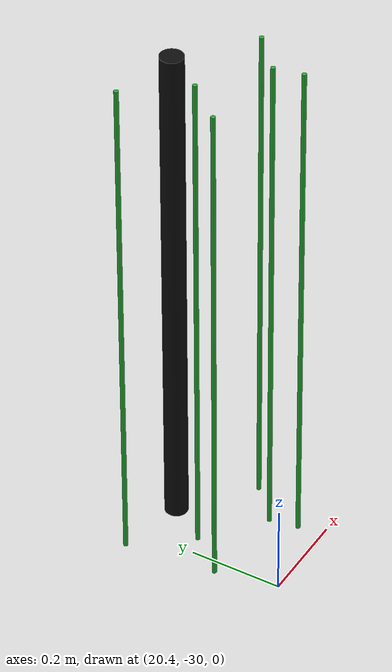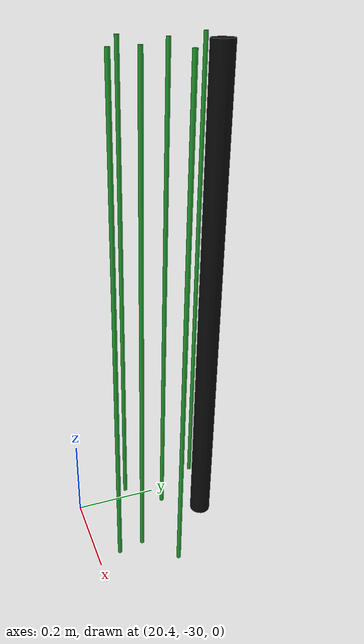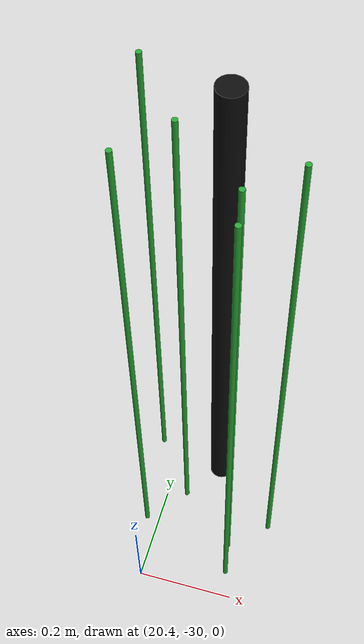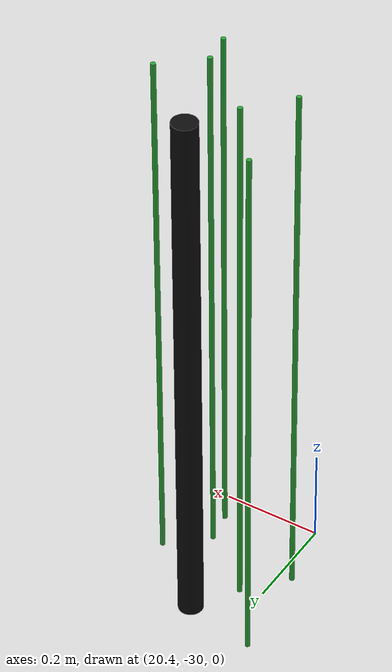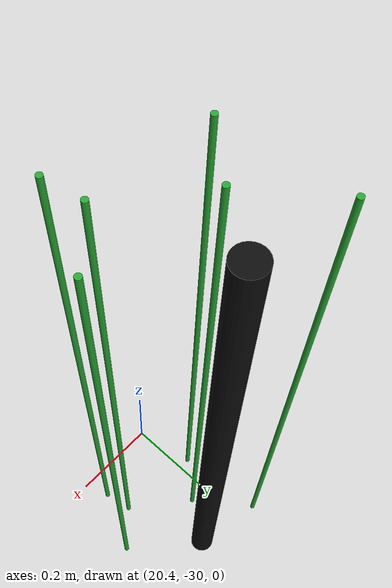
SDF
<sdf version="1.6">
 <world name="default">
  <model name="pole_24">
   <static>1</static>
   <pose>20.5 -29.7 0.575 0 -0 0</pose>
   <link name="link">
    <collision name="collision">
     <geometry><cylinder><length>1.15</length><radius>0.025</radius></cylinder></geometry>
    </collision>
    <visual name="visual">
     <geometry><cylinder><length>1.15</length><radius>0.025</radius></cylinder></geometry>
     <material>
      <script><uri>file://media/materials/scripts/gazebo.material</uri><name>Gazebo/Chrome</name></script>
      <shader type="vertex"><normal_map>__default__</normal_map></shader>
      <emissive>0.1 0.1 0.1 1</emissive>
      <specular>0.01 0.01 0.01 1</specular>
      <ambient>0.5 0.5 0.5 1</ambient>
      <diffuse>0.05 0.05 0.05 1</diffuse>
     </material>
    </visual>
   </link>
  </model>
  <model name="pole_27_clone_clone_55">
   <link name="link">
    <inertial>
     <mass>1</mass>
     <inertia><ixx>1</ixx><ixy>0</ixy><ixz>0</ixz><iyy>1</iyy><iyz>0</iyz><izz>1</izz></inertia>
    </inertial>
    <visual name="visual">
     <geometry><cylinder><length>1.15</length><radius>0.005</radius></cylinder></geometry>
     <material>
      <script><uri>file://media/materials/scripts/gazebo.material</uri><name>Gazebo/Green</name></script>
      <shader type="vertex"><normal_map>__default__</normal_map></shader>
      <emissive>0 0.1 0 1</emissive>
      <specular>0 0.01 0 1</specular>
      <ambient>0 0.5 0 1</ambient>
      <diffuse>0 0.05 0 1</diffuse>
     </material>
    </visual>
    <collision name="collision">
     <geometry><cylinder><radius>0.005</radius><length>1.15</length></cylinder></geometry>
     <surface>
      <friction>
       <ode><mu>1</mu><mu2>1</mu2><fdir1>0 0 0</fdir1><slip1>0</slip1><slip2>0</slip2></ode>
       <torsional>
        <coefficient>1</coefficient>
        <patch_radius>0</patch_radius>
        <surface_radius>0</surface_radius>
        <use_patch_radius>1</use_patch_radius>
        <ode><slip>0</slip></ode>
       </torsional>
      </friction>
      <bounce><restitution_coefficient>0</restitution_coefficient><threshold>1e+06</threshold></bounce>
      <contact>
       <collide_without_contact>0</collide_without_contact>
       <collide_without_contact_bitmask>1</collide_without_contact_bitmask>
       <collide_bitmask>1</collide_bitmask>
       <ode>
        <soft_cfm>0</soft_cfm>
        <soft_erp>0.2</soft_erp>
        <kp>1e+13</kp>
        <kd>1</kd>
        <max_vel>0.01</max_vel>
        <min_depth>0</min_depth>
       </ode>
       <bullet>
        <split_impulse>1</split_impulse>
        <split_impulse_penetration_threshold>-0.01</split_impulse_penetration_threshold>
        <soft_cfm>0</soft_cfm>
        <soft_erp>0.2</soft_erp>
        <kp>1e+13</kp>
        <kd>1</kd>
       </bullet>
      </contact>
     </surface>
    </collision>
   </link>
   <static>1</static>
   <pose>20.3516 -29.6675 0.575 0 -0 0</pose>
  </model>
  <model name="pole_27_clone_clone_57">
   <link name="link">
    <inertial>
     <mass>1</mass>
     <inertia><ixx>1</ixx><ixy>0</ixy><ixz>0</ixz><iyy>1</iyy><iyz>0</iyz><izz>1</izz></inertia>
    </inertial>
    <visual name="visual">
     <geometry><cylinder><length>1.15</length><radius>0.005</radius></cylinder></geometry>
     <material>
      <script><uri>file://media/materials/scripts/gazebo.material</uri><name>Gazebo/Green</name></script>
      <shader type="vertex"><normal_map>__default__</normal_map></shader>
      <emissive>0 0.1 0 1</emissive>
      <specular>0 0.01 0 1</specular>
      <ambient>0 0.5 0 1</ambient>
      <diffuse>0 0.05 0 1</diffuse>
     </material>
    </visual>
    <collision name="collision">
     <geometry><cylinder><radius>0.005</radius><length>1.15</length></cylinder></geometry>
     <surface>
      <friction>
       <ode><mu>1</mu><mu2>1</mu2><fdir1>0 0 0</fdir1><slip1>0</slip1><slip2>0</slip2></ode>
       <torsional>
        <coefficient>1</coefficient>
        <patch_radius>0</patch_radius>
        <surface_radius>0</surface_radius>
        <use_patch_radius>1</use_patch_radius>
        <ode><slip>0</slip></ode>
       </torsional>
      </friction>
      <bounce><restitution_coefficient>0</restitution_coefficient><threshold>1e+06</threshold></bounce>
      <contact>
       <collide_without_contact>0</collide_without_contact>
       <collide_without_contact_bitmask>1</collide_without_contact_bitmask>
       <collide_bitmask>1</collide_bitmask>
       <ode>
        <soft_cfm>0</soft_cfm>
        <soft_erp>0.2</soft_erp>
        <kp>1e+13</kp>
        <kd>1</kd>
        <max_vel>0.01</max_vel>
        <min_depth>0</min_depth>
       </ode>
       <bullet>
        <split_impulse>1</split_impulse>
        <split_impulse_penetration_threshold>-0.01</split_impulse_penetration_threshold>
        <soft_cfm>0</soft_cfm>
        <soft_erp>0.2</soft_erp>
        <kp>1e+13</kp>
        <kd>1</kd>
       </bullet>
      </contact>
     </surface>
    </collision>
   </link>
   <static>1</static>
   <pose>20.4421 -29.7854 0.575 0 -0 0</pose>
  </model>
  <model name="pole_27_clone_clone_58">
   <link name="link">
    <inertial>
     <mass>1</mass>
     <inertia><ixx>1</ixx><ixy>0</ixy><ixz>0</ixz><iyy>1</iyy><iyz>0</iyz><izz>1</izz></inertia>
    </inertial>
    <visual name="visual">
     <geometry><cylinder><length>1.15</length><radius>0.005</radius></cylinder></geometry>
     <material>
      <script><uri>file://media/materials/scripts/gazebo.material</uri><name>Gazebo/Green</name></script>
      <shader type="vertex"><normal_map>__default__</normal_map></shader>
      <emissive>0 0.1 0 1</emissive>
      <specular>0 0.01 0 1</specular>
      <ambient>0 0.5 0 1</ambient>
      <diffuse>0 0.05 0 1</diffuse>
     </material>
    </visual>
    <collision name="collision">
     <geometry><cylinder><radius>0.005</radius><length>1.15</length></cylinder></geometry>
     <surface>
      <friction>
       <ode><mu>1</mu><mu2>1</mu2><fdir1>0 0 0</fdir1><slip1>0</slip1><slip2>0</slip2></ode>
       <torsional>
        <coefficient>1</coefficient>
        <patch_radius>0</patch_radius>
        <surface_radius>0</surface_radius>
        <use_patch_radius>1</use_patch_radius>
        <ode><slip>0</slip></ode>
       </torsional>
      </friction>
      <bounce><restitution_coefficient>0</restitution_coefficient><threshold>1e+06</threshold></bounce>
      <contact>
       <collide_without_contact>0</collide_without_contact>
       <collide_without_contact_bitmask>1</collide_without_contact_bitmask>
       <collide_bitmask>1</collide_bitmask>
       <ode>
        <soft_cfm>0</soft_cfm>
        <soft_erp>0.2</soft_erp>
        <kp>1e+13</kp>
        <kd>1</kd>
        <max_vel>0.01</max_vel>
        <min_depth>0</min_depth>
       </ode>
       <bullet>
        <split_impulse>1</split_impulse>
        <split_impulse_penetration_threshold>-0.01</split_impulse_penetration_threshold>
        <soft_cfm>0</soft_cfm>
        <soft_erp>0.2</soft_erp>
        <kp>1e+13</kp>
        <kd>1</kd>
       </bullet>
      </contact>
     </surface>
    </collision>
   </link>
   <static>1</static>
   <pose>20.6392 -29.8165 0.575 0 -0 0</pose>
  </model>
  <model name="pole_27_clone_clone_59">
   <link name="link">
    <inertial>
     <mass>1</mass>
     <inertia><ixx>1</ixx><ixy>0</ixy><ixz>0</ixz><iyy>1</iyy><iyz>0</iyz><izz>1</izz></inertia>
    </inertial>
    <visual name="visual">
     <geometry><cylinder><length>1.15</length><radius>0.005</radius></cylinder></geometry>
     <material>
      <script><uri>file://media/materials/scripts/gazebo.material</uri><name>Gazebo/Green</name></script>
      <shader type="vertex"><normal_map>__default__</normal_map></shader>
      <emissive>0 0.1 0 1</emissive>
      <specular>0 0.01 0 1</specular>
      <ambient>0 0.5 0 1</ambient>
      <diffuse>0 0.05 0 1</diffuse>
     </material>
    </visual>
    <collision name="collision">
     <geometry><cylinder><radius>0.005</radius><length>1.15</length></cylinder></geometry>
     <surface>
      <friction>
       <ode><mu>1</mu><mu2>1</mu2><fdir1>0 0 0</fdir1><slip1>0</slip1><slip2>0</slip2></ode>
       <torsional>
        <coefficient>1</coefficient>
        <patch_radius>0</patch_radius>
        <surface_radius>0</surface_radius>
        <use_patch_radius>1</use_patch_radius>
        <ode><slip>0</slip></ode>
       </torsional>
      </friction>
      <bounce><restitution_coefficient>0</restitution_coefficient><threshold>1e+06</threshold></bounce>
      <contact>
       <collide_without_contact>0</collide_without_contact>
       <collide_without_contact_bitmask>1</collide_without_contact_bitmask>
       <collide_bitmask>1</collide_bitmask>
       <ode>
        <soft_cfm>0</soft_cfm>
        <soft_erp>0.2</soft_erp>
        <kp>1e+13</kp>
        <kd>1</kd>
        <max_vel>0.01</max_vel>
        <min_depth>0</min_depth>
       </ode>
       <bullet>
        <split_impulse>1</split_impulse>
        <split_impulse_penetration_threshold>-0.01</split_impulse_penetration_threshold>
        <soft_cfm>0</soft_cfm>
        <soft_erp>0.2</soft_erp>
        <kp>1e+13</kp>
        <kd>1</kd>
       </bullet>
      </contact>
     </surface>
    </collision>
   </link>
   <static>1</static>
   <pose>20.3729 -29.8656 0.575 0 -0 0</pose>
  </model>
  <model name="pole_27_clone_clone_60">
   <link name="link">
    <inertial>
     <mass>1</mass>
     <inertia><ixx>1</ixx><ixy>0</ixy><ixz>0</ixz><iyy>1</iyy><iyz>0</iyz><izz>1</izz></inertia>
    </inertial>
    <visual name="visual">
     <geometry><cylinder><length>1.15</length><radius>0.005</radius></cylinder></geometry>
     <material>
      <script><uri>file://media/materials/scripts/gazebo.material</uri><name>Gazebo/Green</name></script>
      <shader type="vertex"><normal_map>__default__</normal_map></shader>
      <emissive>0 0.1 0 1</emissive>
      <specular>0 0.01 0 1</specular>
      <ambient>0 0.5 0 1</ambient>
      <diffuse>0 0.05 0 1</diffuse>
     </material>
    </visual>
    <collision name="collision">
     <geometry><cylinder><radius>0.005</radius><length>1.15</length></cylinder></geometry>
     <surface>
      <friction>
       <ode><mu>1</mu><mu2>1</mu2><fdir1>0 0 0</fdir1><slip1>0</slip1><slip2>0</slip2></ode>
       <torsional>
        <coefficient>1</coefficient>
        <patch_radius>0</patch_radius>
        <surface_radius>0</surface_radius>
        <use_patch_radius>1</use_patch_radius>
        <ode><slip>0</slip></ode>
       </torsional>
      </friction>
      <bounce><restitution_coefficient>0</restitution_coefficient><threshold>1e+06</threshold></bounce>
      <contact>
       <collide_without_contact>0</collide_without_contact>
       <collide_without_contact_bitmask>1</collide_without_contact_bitmask>
       <collide_bitmask>1</collide_bitmask>
       <ode>
        <soft_cfm>0</soft_cfm>
        <soft_erp>0.2</soft_erp>
        <kp>1e+13</kp>
        <kd>1</kd>
        <max_vel>0.01</max_vel>
        <min_depth>0</min_depth>
       </ode>
       <bullet>
        <split_impulse>1</split_impulse>
        <split_impulse_penetration_threshold>-0.01</split_impulse_penetration_threshold>
        <soft_cfm>0</soft_cfm>
        <soft_erp>0.2</soft_erp>
        <kp>1e+13</kp>
        <kd>1</kd>
       </bullet>
      </contact>
     </surface>
    </collision>
   </link>
   <static>1</static>
   <pose>20.5648 -29.8841 0.575 0 -0 0</pose>
  </model>
  <model name="pole_27_clone_clone_64">
   <link name="link">
    <inertial>
     <mass>1</mass>
     <inertia><ixx>1</ixx><ixy>0</ixy><ixz>0</ixz><iyy>1</iyy><iyz>0</iyz><izz>1</izz></inertia>
    </inertial>
    <visual name="visual">
     <geometry><cylinder><length>1.15</length><radius>0.005</radius></cylinder></geometry>
     <material>
      <script><uri>file://media/materials/scripts/gazebo.material</uri><name>Gazebo/Green</name></script>
      <shader type="vertex"><normal_map>__default__</normal_map></shader>
      <emissive>0 0.1 0 1</emissive>
      <specular>0 0.01 0 1</specular>
      <ambient>0 0.5 0 1</ambient>
      <diffuse>0 0.05 0 1</diffuse>
     </material>
    </visual>
    <collision name="collision">
     <geometry><cylinder><radius>0.005</radius><length>1.15</length></cylinder></geometry>
     <surface>
      <friction>
       <ode><mu>1</mu><mu2>1</mu2><fdir1>0 0 0</fdir1><slip1>0</slip1><slip2>0</slip2></ode>
       <torsional>
        <coefficient>1</coefficient>
        <patch_radius>0</patch_radius>
        <surface_radius>0</surface_radius>
        <use_patch_radius>1</use_patch_radius>
        <ode><slip>0</slip></ode>
       </torsional>
      </friction>
      <bounce><restitution_coefficient>0</restitution_coefficient><threshold>1e+06</threshold></bounce>
      <contact>
       <collide_without_contact>0</collide_without_contact>
       <collide_without_contact_bitmask>1</collide_without_contact_bitmask>
       <collide_bitmask>1</collide_bitmask>
       <ode>
        <soft_cfm>0</soft_cfm>
        <soft_erp>0.2</soft_erp>
        <kp>1e+13</kp>
        <kd>1</kd>
        <max_vel>0.01</max_vel>
        <min_depth>0</min_depth>
       </ode>
       <bullet>
        <split_impulse>1</split_impulse>
        <split_impulse_penetration_threshold>-0.01</split_impulse_penetration_threshold>
        <soft_cfm>0</soft_cfm>
        <soft_erp>0.2</soft_erp>
        <kp>1e+13</kp>
        <kd>1</kd>
       </bullet>
      </contact>
     </surface>
    </collision>
   </link>
   <static>1</static>
   <pose>20.5761 -29.9456 0.575 0 -0 0</pose>
  </model>
 </world>
</sdf>
